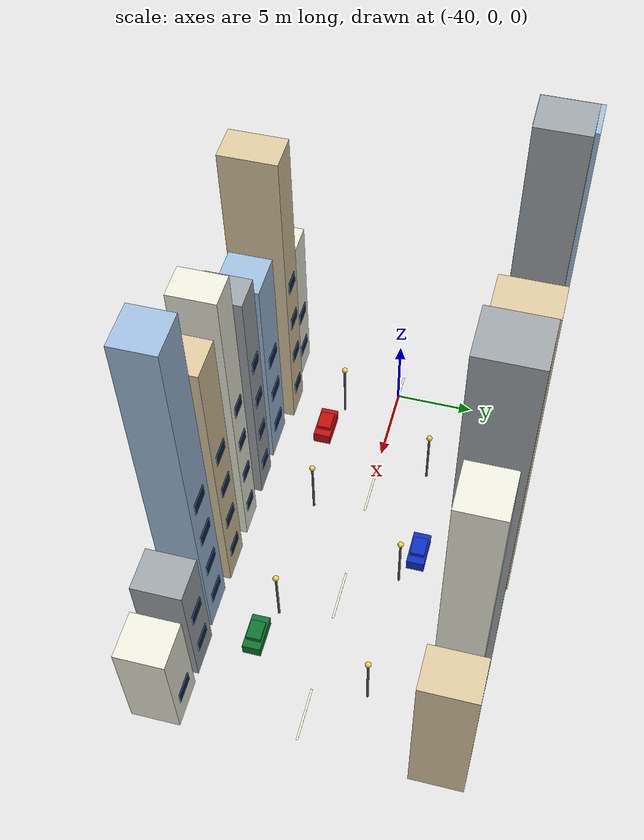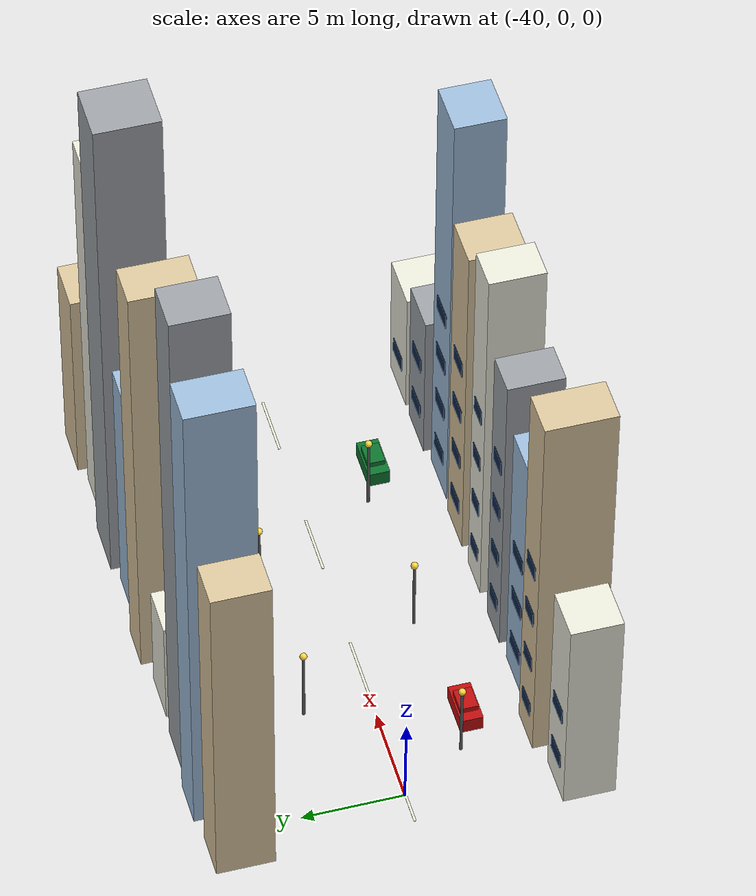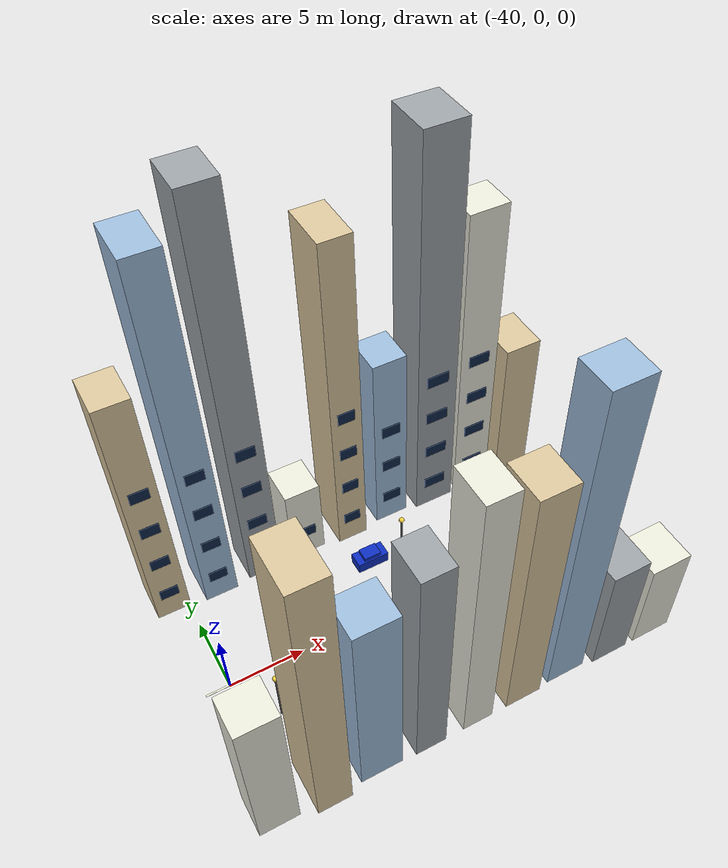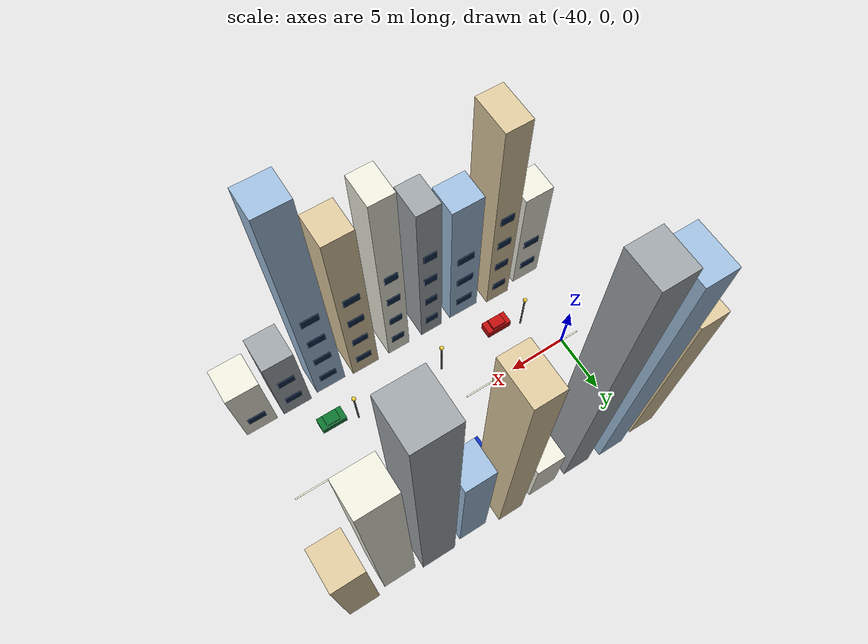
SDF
<sdf version="1.7">
 <world name="urban_street">
  <model name="white_lane_marking_00">
   <static>1</static>
   <pose>-40 0 0.055 0 -0 0</pose>
   <link name="link">
    <collision name="collision"><geometry><box><size>3.2 0.12 0.02</size></box></geometry></collision>
    <visual name="visual">
     <geometry><box><size>3.2 0.12 0.02</size></box></geometry>
     <material>
      <ambient>0.95 0.95 0.85 1</ambient>
      <diffuse>0.95 0.95 0.85 1</diffuse>
      <specular>0.1 0.1 0.1 1</specular>
     </material>
    </visual>
   </link>
  </model>
  <model name="white_lane_marking_01">
   <static>1</static>
   <pose>-32 0 0.055 0 -0 0</pose>
   <link name="link">
    <collision name="collision"><geometry><box><size>3.2 0.12 0.02</size></box></geometry></collision>
    <visual name="visual">
     <geometry><box><size>3.2 0.12 0.02</size></box></geometry>
     <material>
      <ambient>0.95 0.95 0.85 1</ambient>
      <diffuse>0.95 0.95 0.85 1</diffuse>
      <specular>0.1 0.1 0.1 1</specular>
     </material>
    </visual>
   </link>
  </model>
  <model name="white_lane_marking_02">
   <static>1</static>
   <pose>-24 0 0.055 0 -0 0</pose>
   <link name="link">
    <collision name="collision"><geometry><box><size>3.2 0.12 0.02</size></box></geometry></collision>
    <visual name="visual">
     <geometry><box><size>3.2 0.12 0.02</size></box></geometry>
     <material>
      <ambient>0.95 0.95 0.85 1</ambient>
      <diffuse>0.95 0.95 0.85 1</diffuse>
      <specular>0.1 0.1 0.1 1</specular>
     </material>
    </visual>
   </link>
  </model>
  <model name="white_lane_marking_03">
   <static>1</static>
   <pose>-16 0 0.055 0 -0 0</pose>
   <link name="link">
    <collision name="collision"><geometry><box><size>3.2 0.12 0.02</size></box></geometry></collision>
    <visual name="visual">
     <geometry><box><size>3.2 0.12 0.02</size></box></geometry>
     <material>
      <ambient>0.95 0.95 0.85 1</ambient>
      <diffuse>0.95 0.95 0.85 1</diffuse>
      <specular>0.1 0.1 0.1 1</specular>
     </material>
    </visual>
   </link>
  </model>
  <model name="building_facade_01">
   <static>1</static>
   <pose>-41 -8.2 5.94 0 -0 0</pose>
   <link name="link">
    <collision name="collision"><geometry><box><size>2.51 2.53 11.88</size></box></geometry></collision>
    <visual name="visual">
     <geometry><box><size>2.51 2.53 11.88</size></box></geometry>
     <material>
      <ambient>0.92 0.92 0.86 1</ambient>
      <diffuse>0.92 0.92 0.86 1</diffuse>
      <specular>0.1 0.1 0.1 1</specular>
     </material>
    </visual>
   </link>
  </model>
  <model name="building_facade_01_window_0">
   <static>1</static>
   <pose>-41 -6.9 2.2 0 -0 0</pose>
   <link name="link">
    <collision name="collision"><geometry><box><size>1.38 0.05 0.85</size></box></geometry></collision>
    <visual name="visual">
     <geometry><box><size>1.38 0.05 0.85</size></box></geometry>
     <material>
      <ambient>0.05 0.14 0.28 1</ambient>
      <diffuse>0.05 0.14 0.28 1</diffuse>
      <specular>0.1 0.1 0.1 1</specular>
     </material>
    </visual>
   </link>
  </model>
  <model name="building_facade_01_window_1">
   <static>1</static>
   <pose>-41 -6.9 5.4 0 -0 0</pose>
   <link name="link">
    <collision name="collision"><geometry><box><size>1.38 0.05 0.85</size></box></geometry></collision>
    <visual name="visual">
     <geometry><box><size>1.38 0.05 0.85</size></box></geometry>
     <material>
      <ambient>0.05 0.14 0.28 1</ambient>
      <diffuse>0.05 0.14 0.28 1</diffuse>
      <specular>0.1 0.1 0.1 1</specular>
     </material>
    </visual>
   </link>
  </model>
  <model name="building_facade_02">
   <static>1</static>
   <pose>-37.75 -8.2 10.96 0 -0 0</pose>
   <link name="link">
    <collision name="collision"><geometry><box><size>2.18 3.46 21.92</size></box></geometry></collision>
    <visual name="visual">
     <geometry><box><size>2.18 3.46 21.92</size></box></geometry>
     <material>
      <ambient>0.86 0.78 0.62 1</ambient>
      <diffuse>0.86 0.78 0.62 1</diffuse>
      <specular>0.1 0.1 0.1 1</specular>
     </material>
    </visual>
   </link>
  </model>
  <model name="building_facade_02_window_0">
   <static>1</static>
   <pose>-37.75 -6.44 2.2 0 -0 0</pose>
   <link name="link">
    <collision name="collision"><geometry><box><size>1.2 0.05 0.85</size></box></geometry></collision>
    <visual name="visual">
     <geometry><box><size>1.2 0.05 0.85</size></box></geometry>
     <material>
      <ambient>0.05 0.14 0.28 1</ambient>
      <diffuse>0.05 0.14 0.28 1</diffuse>
      <specular>0.1 0.1 0.1 1</specular>
     </material>
    </visual>
   </link>
  </model>
  <model name="building_facade_02_window_1">
   <static>1</static>
   <pose>-37.75 -6.44 5.4 0 -0 0</pose>
   <link name="link">
    <collision name="collision"><geometry><box><size>1.2 0.05 0.85</size></box></geometry></collision>
    <visual name="visual">
     <geometry><box><size>1.2 0.05 0.85</size></box></geometry>
     <material>
      <ambient>0.05 0.14 0.28 1</ambient>
      <diffuse>0.05 0.14 0.28 1</diffuse>
      <specular>0.1 0.1 0.1 1</specular>
     </material>
    </visual>
   </link>
  </model>
  <model name="building_facade_02_window_2">
   <static>1</static>
   <pose>-37.75 -6.44 8.6 0 -0 0</pose>
   <link name="link">
    <collision name="collision"><geometry><box><size>1.2 0.05 0.85</size></box></geometry></collision>
    <visual name="visual">
     <geometry><box><size>1.2 0.05 0.85</size></box></geometry>
     <material>
      <ambient>0.05 0.14 0.28 1</ambient>
      <diffuse>0.05 0.14 0.28 1</diffuse>
      <specular>0.1 0.1 0.1 1</specular>
     </material>
    </visual>
   </link>
  </model>
  <model name="building_facade_02_window_3">
   <static>1</static>
   <pose>-37.75 -6.44 11.8 0 -0 0</pose>
   <link name="link">
    <collision name="collision"><geometry><box><size>1.2 0.05 0.85</size></box></geometry></collision>
    <visual name="visual">
     <geometry><box><size>1.2 0.05 0.85</size></box></geometry>
     <material>
      <ambient>0.05 0.14 0.28 1</ambient>
      <diffuse>0.05 0.14 0.28 1</diffuse>
      <specular>0.1 0.1 0.1 1</specular>
     </material>
    </visual>
   </link>
  </model>
  <model name="building_facade_03">
   <static>1</static>
   <pose>-34.5 -8.2 7.77 0 -0 0</pose>
   <link name="link">
    <collision name="collision"><geometry><box><size>2.71 2.61 15.55</size></box></geometry></collision>
    <visual name="visual">
     <geometry><box><size>2.71 2.61 15.55</size></box></geometry>
     <material>
      <ambient>0.62 0.74 0.86 1</ambient>
      <diffuse>0.62 0.74 0.86 1</diffuse>
      <specular>0.1 0.1 0.1 1</specular>
     </material>
    </visual>
   </link>
  </model>
  <model name="building_facade_03_window_0">
   <static>1</static>
   <pose>-34.5 -6.86 2.2 0 -0 0</pose>
   <link name="link">
    <collision name="collision"><geometry><box><size>1.49 0.05 0.85</size></box></geometry></collision>
    <visual name="visual">
     <geometry><box><size>1.49 0.05 0.85</size></box></geometry>
     <material>
      <ambient>0.05 0.14 0.28 1</ambient>
      <diffuse>0.05 0.14 0.28 1</diffuse>
      <specular>0.1 0.1 0.1 1</specular>
     </material>
    </visual>
   </link>
  </model>
  <model name="building_facade_03_window_1">
   <static>1</static>
   <pose>-34.5 -6.86 5.4 0 -0 0</pose>
   <link name="link">
    <collision name="collision"><geometry><box><size>1.49 0.05 0.85</size></box></geometry></collision>
    <visual name="visual">
     <geometry><box><size>1.49 0.05 0.85</size></box></geometry>
     <material>
      <ambient>0.05 0.14 0.28 1</ambient>
      <diffuse>0.05 0.14 0.28 1</diffuse>
      <specular>0.1 0.1 0.1 1</specular>
     </material>
    </visual>
   </link>
  </model>
  <model name="building_facade_03_window_2">
   <static>1</static>
   <pose>-34.5 -6.86 8.6 0 -0 0</pose>
   <link name="link">
    <collision name="collision"><geometry><box><size>1.49 0.05 0.85</size></box></geometry></collision>
    <visual name="visual">
     <geometry><box><size>1.49 0.05 0.85</size></box></geometry>
     <material>
      <ambient>0.05 0.14 0.28 1</ambient>
      <diffuse>0.05 0.14 0.28 1</diffuse>
      <specular>0.1 0.1 0.1 1</specular>
     </material>
    </visual>
   </link>
  </model>
  <model name="building_facade_04">
   <static>1</static>
   <pose>-31.25 -8.2 8.82 0 -0 0</pose>
   <link name="link">
    <collision name="collision"><geometry><box><size>2.02 2.78 17.63</size></box></geometry></collision>
    <visual name="visual">
     <geometry><box><size>2.02 2.78 17.63</size></box></geometry>
     <material>
      <ambient>0.62 0.64 0.66 1</ambient>
      <diffuse>0.62 0.64 0.66 1</diffuse>
      <specular>0.1 0.1 0.1 1</specular>
     </material>
    </visual>
   </link>
  </model>
  <model name="building_facade_04_window_0">
   <static>1</static>
   <pose>-31.25 -6.78 2.2 0 -0 0</pose>
   <link name="link">
    <collision name="collision"><geometry><box><size>1.11 0.05 0.85</size></box></geometry></collision>
    <visual name="visual">
     <geometry><box><size>1.11 0.05 0.85</size></box></geometry>
     <material>
      <ambient>0.05 0.14 0.28 1</ambient>
      <diffuse>0.05 0.14 0.28 1</diffuse>
      <specular>0.1 0.1 0.1 1</specular>
     </material>
    </visual>
   </link>
  </model>
  <model name="building_facade_04_window_1">
   <static>1</static>
   <pose>-31.25 -6.78 5.4 0 -0 0</pose>
   <link name="link">
    <collision name="collision"><geometry><box><size>1.11 0.05 0.85</size></box></geometry></collision>
    <visual name="visual">
     <geometry><box><size>1.11 0.05 0.85</size></box></geometry>
     <material>
      <ambient>0.05 0.14 0.28 1</ambient>
      <diffuse>0.05 0.14 0.28 1</diffuse>
      <specular>0.1 0.1 0.1 1</specular>
     </material>
    </visual>
   </link>
  </model>
  <model name="building_facade_04_window_2">
   <static>1</static>
   <pose>-31.25 -6.78 8.6 0 -0 0</pose>
   <link name="link">
    <collision name="collision"><geometry><box><size>1.11 0.05 0.85</size></box></geometry></collision>
    <visual name="visual">
     <geometry><box><size>1.11 0.05 0.85</size></box></geometry>
     <material>
      <ambient>0.05 0.14 0.28 1</ambient>
      <diffuse>0.05 0.14 0.28 1</diffuse>
      <specular>0.1 0.1 0.1 1</specular>
     </material>
    </visual>
   </link>
  </model>
  <model name="building_facade_04_window_3">
   <static>1</static>
   <pose>-31.25 -6.78 11.8 0 -0 0</pose>
   <link name="link">
    <collision name="collision"><geometry><box><size>1.11 0.05 0.85</size></box></geometry></collision>
    <visual name="visual">
     <geometry><box><size>1.11 0.05 0.85</size></box></geometry>
     <material>
      <ambient>0.05 0.14 0.28 1</ambient>
      <diffuse>0.05 0.14 0.28 1</diffuse>
      <specular>0.1 0.1 0.1 1</specular>
     </material>
    </visual>
   </link>
  </model>
  <model name="building_facade_05">
   <static>1</static>
   <pose>-28 -8.2 10.62 0 -0 0</pose>
   <link name="link">
    <collision name="collision"><geometry><box><size>2.02 2.76 21.25</size></box></geometry></collision>
    <visual name="visual">
     <geometry><box><size>2.02 2.76 21.25</size></box></geometry>
     <material>
      <ambient>0.92 0.92 0.86 1</ambient>
      <diffuse>0.92 0.92 0.86 1</diffuse>
      <specular>0.1 0.1 0.1 1</specular>
     </material>
    </visual>
   </link>
  </model>
  <model name="building_facade_05_window_0">
   <static>1</static>
   <pose>-28 -6.79 2.2 0 -0 0</pose>
   <link name="link">
    <collision name="collision"><geometry><box><size>1.11 0.05 0.85</size></box></geometry></collision>
    <visual name="visual">
     <geometry><box><size>1.11 0.05 0.85</size></box></geometry>
     <material>
      <ambient>0.05 0.14 0.28 1</ambient>
      <diffuse>0.05 0.14 0.28 1</diffuse>
      <specular>0.1 0.1 0.1 1</specular>
     </material>
    </visual>
   </link>
  </model>
  <model name="building_facade_05_window_1">
   <static>1</static>
   <pose>-28 -6.79 5.4 0 -0 0</pose>
   <link name="link">
    <collision name="collision"><geometry><box><size>1.11 0.05 0.85</size></box></geometry></collision>
    <visual name="visual">
     <geometry><box><size>1.11 0.05 0.85</size></box></geometry>
     <material>
      <ambient>0.05 0.14 0.28 1</ambient>
      <diffuse>0.05 0.14 0.28 1</diffuse>
      <specular>0.1 0.1 0.1 1</specular>
     </material>
    </visual>
   </link>
  </model>
  <model name="building_facade_05_window_2">
   <static>1</static>
   <pose>-28 -6.79 8.6 0 -0 0</pose>
   <link name="link">
    <collision name="collision"><geometry><box><size>1.11 0.05 0.85</size></box></geometry></collision>
    <visual name="visual">
     <geometry><box><size>1.11 0.05 0.85</size></box></geometry>
     <material>
      <ambient>0.05 0.14 0.28 1</ambient>
      <diffuse>0.05 0.14 0.28 1</diffuse>
      <specular>0.1 0.1 0.1 1</specular>
     </material>
    </visual>
   </link>
  </model>
  <model name="building_facade_05_window_3">
   <static>1</static>
   <pose>-28 -6.79 11.8 0 -0 0</pose>
   <link name="link">
    <collision name="collision"><geometry><box><size>1.11 0.05 0.85</size></box></geometry></collision>
    <visual name="visual">
     <geometry><box><size>1.11 0.05 0.85</size></box></geometry>
     <material>
      <ambient>0.05 0.14 0.28 1</ambient>
      <diffuse>0.05 0.14 0.28 1</diffuse>
      <specular>0.1 0.1 0.1 1</specular>
     </material>
    </visual>
   </link>
  </model>
  <model name="building_facade_06">
   <static>1</static>
   <pose>-24.75 -8.2 9.87 0 -0 0</pose>
   <link name="link">
    <collision name="collision"><geometry><box><size>2.44 2.79 19.73</size></box></geometry></collision>
    <visual name="visual">
     <geometry><box><size>2.44 2.79 19.73</size></box></geometry>
     <material>
      <ambient>0.86 0.78 0.62 1</ambient>
      <diffuse>0.86 0.78 0.62 1</diffuse>
      <specular>0.1 0.1 0.1 1</specular>
     </material>
    </visual>
   </link>
  </model>
  <model name="building_facade_06_window_0">
   <static>1</static>
   <pose>-24.75 -6.78 2.2 0 -0 0</pose>
   <link name="link">
    <collision name="collision"><geometry><box><size>1.34 0.05 0.85</size></box></geometry></collision>
    <visual name="visual">
     <geometry><box><size>1.34 0.05 0.85</size></box></geometry>
     <material>
      <ambient>0.05 0.14 0.28 1</ambient>
      <diffuse>0.05 0.14 0.28 1</diffuse>
      <specular>0.1 0.1 0.1 1</specular>
     </material>
    </visual>
   </link>
  </model>
  <model name="building_facade_06_window_1">
   <static>1</static>
   <pose>-24.75 -6.78 5.4 0 -0 0</pose>
   <link name="link">
    <collision name="collision"><geometry><box><size>1.34 0.05 0.85</size></box></geometry></collision>
    <visual name="visual">
     <geometry><box><size>1.34 0.05 0.85</size></box></geometry>
     <material>
      <ambient>0.05 0.14 0.28 1</ambient>
      <diffuse>0.05 0.14 0.28 1</diffuse>
      <specular>0.1 0.1 0.1 1</specular>
     </material>
    </visual>
   </link>
  </model>
  <model name="building_facade_06_window_2">
   <static>1</static>
   <pose>-24.75 -6.78 8.6 0 -0 0</pose>
   <link name="link">
    <collision name="collision"><geometry><box><size>1.34 0.05 0.85</size></box></geometry></collision>
    <visual name="visual">
     <geometry><box><size>1.34 0.05 0.85</size></box></geometry>
     <material>
      <ambient>0.05 0.14 0.28 1</ambient>
      <diffuse>0.05 0.14 0.28 1</diffuse>
      <specular>0.1 0.1 0.1 1</specular>
     </material>
    </visual>
   </link>
  </model>
  <model name="building_facade_06_window_3">
   <static>1</static>
   <pose>-24.75 -6.78 11.8 0 -0 0</pose>
   <link name="link">
    <collision name="collision"><geometry><box><size>1.34 0.05 0.85</size></box></geometry></collision>
    <visual name="visual">
     <geometry><box><size>1.34 0.05 0.85</size></box></geometry>
     <material>
      <ambient>0.05 0.14 0.28 1</ambient>
      <diffuse>0.05 0.14 0.28 1</diffuse>
      <specular>0.1 0.1 0.1 1</specular>
     </material>
    </visual>
   </link>
  </model>
  <model name="building_facade_07">
   <static>1</static>
   <pose>-21.5 -8.2 12.57 0 -0 0</pose>
   <link name="link">
    <collision name="collision"><geometry><box><size>2.65 2.51 25.15</size></box></geometry></collision>
    <visual name="visual">
     <geometry><box><size>2.65 2.51 25.15</size></box></geometry>
     <material>
      <ambient>0.62 0.74 0.86 1</ambient>
      <diffuse>0.62 0.74 0.86 1</diffuse>
      <specular>0.1 0.1 0.1 1</specular>
     </material>
    </visual>
   </link>
  </model>
  <model name="building_facade_07_window_0">
   <static>1</static>
   <pose>-21.5 -6.92 2.2 0 -0 0</pose>
   <link name="link">
    <collision name="collision"><geometry><box><size>1.46 0.05 0.85</size></box></geometry></collision>
    <visual name="visual">
     <geometry><box><size>1.46 0.05 0.85</size></box></geometry>
     <material>
      <ambient>0.05 0.14 0.28 1</ambient>
      <diffuse>0.05 0.14 0.28 1</diffuse>
      <specular>0.1 0.1 0.1 1</specular>
     </material>
    </visual>
   </link>
  </model>
  <model name="building_facade_07_window_1">
   <static>1</static>
   <pose>-21.5 -6.92 5.4 0 -0 0</pose>
   <link name="link">
    <collision name="collision"><geometry><box><size>1.46 0.05 0.85</size></box></geometry></collision>
    <visual name="visual">
     <geometry><box><size>1.46 0.05 0.85</size></box></geometry>
     <material>
      <ambient>0.05 0.14 0.28 1</ambient>
      <diffuse>0.05 0.14 0.28 1</diffuse>
      <specular>0.1 0.1 0.1 1</specular>
     </material>
    </visual>
   </link>
  </model>
  <model name="building_facade_07_window_2">
   <static>1</static>
   <pose>-21.5 -6.92 8.6 0 -0 0</pose>
   <link name="link">
    <collision name="collision"><geometry><box><size>1.46 0.05 0.85</size></box></geometry></collision>
    <visual name="visual">
     <geometry><box><size>1.46 0.05 0.85</size></box></geometry>
     <material>
      <ambient>0.05 0.14 0.28 1</ambient>
      <diffuse>0.05 0.14 0.28 1</diffuse>
      <specular>0.1 0.1 0.1 1</specular>
     </material>
    </visual>
   </link>
  </model>
  <model name="building_facade_07_window_3">
   <static>1</static>
   <pose>-21.5 -6.92 11.8 0 -0 0</pose>
   <link name="link">
    <collision name="collision"><geometry><box><size>1.46 0.05 0.85</size></box></geometry></collision>
    <visual name="visual">
     <geometry><box><size>1.46 0.05 0.85</size></box></geometry>
     <material>
      <ambient>0.05 0.14 0.28 1</ambient>
      <diffuse>0.05 0.14 0.28 1</diffuse>
      <specular>0.1 0.1 0.1 1</specular>
     </material>
    </visual>
   </link>
  </model>
  <model name="building_facade_08">
   <static>1</static>
   <pose>-18.25 -8.2 4.44 0 -0 0</pose>
   <link name="link">
    <collision name="collision"><geometry><box><size>2.56 2.94 8.89</size></box></geometry></collision>
    <visual name="visual">
     <geometry><box><size>2.56 2.94 8.89</size></box></geometry>
     <material>
      <ambient>0.62 0.64 0.66 1</ambient>
      <diffuse>0.62 0.64 0.66 1</diffuse>
      <specular>0.1 0.1 0.1 1</specular>
     </material>
    </visual>
   </link>
  </model>
  <model name="building_facade_08_window_0">
   <static>1</static>
   <pose>-18.25 -6.7 2.2 0 -0 0</pose>
   <link name="link">
    <collision name="collision"><geometry><box><size>1.41 0.05 0.85</size></box></geometry></collision>
    <visual name="visual">
     <geometry><box><size>1.41 0.05 0.85</size></box></geometry>
     <material>
      <ambient>0.05 0.14 0.28 1</ambient>
      <diffuse>0.05 0.14 0.28 1</diffuse>
      <specular>0.1 0.1 0.1 1</specular>
     </material>
    </visual>
   </link>
  </model>
  <model name="building_facade_08_window_1">
   <static>1</static>
   <pose>-18.25 -6.7 5.4 0 -0 0</pose>
   <link name="link">
    <collision name="collision"><geometry><box><size>1.41 0.05 0.85</size></box></geometry></collision>
    <visual name="visual">
     <geometry><box><size>1.41 0.05 0.85</size></box></geometry>
     <material>
      <ambient>0.05 0.14 0.28 1</ambient>
      <diffuse>0.05 0.14 0.28 1</diffuse>
      <specular>0.1 0.1 0.1 1</specular>
     </material>
    </visual>
   </link>
  </model>
  <model name="building_facade_09">
   <static>1</static>
   <pose>-15 -8.2 3.66 0 -0 0</pose>
   <link name="link">
    <collision name="collision"><geometry><box><size>2.77 2.94 7.32</size></box></geometry></collision>
    <visual name="visual">
     <geometry><box><size>2.77 2.94 7.32</size></box></geometry>
     <material>
      <ambient>0.92 0.92 0.86 1</ambient>
      <diffuse>0.92 0.92 0.86 1</diffuse>
      <specular>0.1 0.1 0.1 1</specular>
     </material>
    </visual>
   </link>
  </model>
  <model name="building_facade_09_window_0">
   <static>1</static>
   <pose>-15 -6.7 2.2 0 -0 0</pose>
   <link name="link">
    <collision name="collision"><geometry><box><size>1.52 0.05 0.85</size></box></geometry></collision>
    <visual name="visual">
     <geometry><box><size>1.52 0.05 0.85</size></box></geometry>
     <material>
      <ambient>0.05 0.14 0.28 1</ambient>
      <diffuse>0.05 0.14 0.28 1</diffuse>
      <specular>0.1 0.1 0.1 1</specular>
     </material>
    </visual>
   </link>
  </model>
  <model name="building_facade_27">
   <static>1</static>
   <pose>-41 8.2 9.52 0 -0 0</pose>
   <link name="link">
    <collision name="collision"><geometry><box><size>2.21 2.82 19.03</size></box></geometry></collision>
    <visual name="visual">
     <geometry><box><size>2.21 2.82 19.03</size></box></geometry>
     <material>
      <ambient>0.86 0.78 0.62 1</ambient>
      <diffuse>0.86 0.78 0.62 1</diffuse>
      <specular>0.1 0.1 0.1 1</specular>
     </material>
    </visual>
   </link>
  </model>
  <model name="building_facade_27_window_0">
   <static>1</static>
   <pose>-41 6.76 2.2 0 -0 0</pose>
   <link name="link">
    <collision name="collision"><geometry><box><size>1.22 0.05 0.85</size></box></geometry></collision>
    <visual name="visual">
     <geometry><box><size>1.22 0.05 0.85</size></box></geometry>
     <material>
      <ambient>0.05 0.14 0.28 1</ambient>
      <diffuse>0.05 0.14 0.28 1</diffuse>
      <specular>0.1 0.1 0.1 1</specular>
     </material>
    </visual>
   </link>
  </model>
  <model name="building_facade_27_window_1">
   <static>1</static>
   <pose>-41 6.76 5.4 0 -0 0</pose>
   <link name="link">
    <collision name="collision"><geometry><box><size>1.22 0.05 0.85</size></box></geometry></collision>
    <visual name="visual">
     <geometry><box><size>1.22 0.05 0.85</size></box></geometry>
     <material>
      <ambient>0.05 0.14 0.28 1</ambient>
      <diffuse>0.05 0.14 0.28 1</diffuse>
      <specular>0.1 0.1 0.1 1</specular>
     </material>
    </visual>
   </link>
  </model>
  <model name="building_facade_27_window_2">
   <static>1</static>
   <pose>-41 6.76 8.6 0 -0 0</pose>
   <link name="link">
    <collision name="collision"><geometry><box><size>1.22 0.05 0.85</size></box></geometry></collision>
    <visual name="visual">
     <geometry><box><size>1.22 0.05 0.85</size></box></geometry>
     <material>
      <ambient>0.05 0.14 0.28 1</ambient>
      <diffuse>0.05 0.14 0.28 1</diffuse>
      <specular>0.1 0.1 0.1 1</specular>
     </material>
    </visual>
   </link>
  </model>
  <model name="building_facade_27_window_3">
   <static>1</static>
   <pose>-41 6.76 11.8 0 -0 0</pose>
   <link name="link">
    <collision name="collision"><geometry><box><size>1.22 0.05 0.85</size></box></geometry></collision>
    <visual name="visual">
     <geometry><box><size>1.22 0.05 0.85</size></box></geometry>
     <material>
      <ambient>0.05 0.14 0.28 1</ambient>
      <diffuse>0.05 0.14 0.28 1</diffuse>
      <specular>0.1 0.1 0.1 1</specular>
     </material>
    </visual>
   </link>
  </model>
  <model name="building_facade_28">
   <static>1</static>
   <pose>-37.75 8.2 13.72 0 -0 0</pose>
   <link name="link">
    <collision name="collision"><geometry><box><size>2.21 3.26 27.45</size></box></geometry></collision>
    <visual name="visual">
     <geometry><box><size>2.21 3.26 27.45</size></box></geometry>
     <material>
      <ambient>0.62 0.74 0.86 1</ambient>
      <diffuse>0.62 0.74 0.86 1</diffuse>
      <specular>0.1 0.1 0.1 1</specular>
     </material>
    </visual>
   </link>
  </model>
  <model name="building_facade_28_window_0">
   <static>1</static>
   <pose>-37.75 6.54 2.2 0 -0 0</pose>
   <link name="link">
    <collision name="collision"><geometry><box><size>1.22 0.05 0.85</size></box></geometry></collision>
    <visual name="visual">
     <geometry><box><size>1.22 0.05 0.85</size></box></geometry>
     <material>
      <ambient>0.05 0.14 0.28 1</ambient>
      <diffuse>0.05 0.14 0.28 1</diffuse>
      <specular>0.1 0.1 0.1 1</specular>
     </material>
    </visual>
   </link>
  </model>
  <model name="building_facade_28_window_1">
   <static>1</static>
   <pose>-37.75 6.54 5.4 0 -0 0</pose>
   <link name="link">
    <collision name="collision"><geometry><box><size>1.22 0.05 0.85</size></box></geometry></collision>
    <visual name="visual">
     <geometry><box><size>1.22 0.05 0.85</size></box></geometry>
     <material>
      <ambient>0.05 0.14 0.28 1</ambient>
      <diffuse>0.05 0.14 0.28 1</diffuse>
      <specular>0.1 0.1 0.1 1</specular>
     </material>
    </visual>
   </link>
  </model>
  <model name="building_facade_28_window_2">
   <static>1</static>
   <pose>-37.75 6.54 8.6 0 -0 0</pose>
   <link name="link">
    <collision name="collision"><geometry><box><size>1.22 0.05 0.85</size></box></geometry></collision>
    <visual name="visual">
     <geometry><box><size>1.22 0.05 0.85</size></box></geometry>
     <material>
      <ambient>0.05 0.14 0.28 1</ambient>
      <diffuse>0.05 0.14 0.28 1</diffuse>
      <specular>0.1 0.1 0.1 1</specular>
     </material>
    </visual>
   </link>
  </model>
  <model name="building_facade_28_window_3">
   <static>1</static>
   <pose>-37.75 6.54 11.8 0 -0 0</pose>
   <link name="link">
    <collision name="collision"><geometry><box><size>1.22 0.05 0.85</size></box></geometry></collision>
    <visual name="visual">
     <geometry><box><size>1.22 0.05 0.85</size></box></geometry>
     <material>
      <ambient>0.05 0.14 0.28 1</ambient>
      <diffuse>0.05 0.14 0.28 1</diffuse>
      <specular>0.1 0.1 0.1 1</specular>
     </material>
    </visual>
   </link>
  </model>
  <model name="building_facade_29">
   <static>1</static>
   <pose>-34.5 8.2 14.97 0 -0 0</pose>
   <link name="link">
    <collision name="collision"><geometry><box><size>2.32 2.79 29.94</size></box></geometry></collision>
    <visual name="visual">
     <geometry><box><size>2.32 2.79 29.94</size></box></geometry>
     <material>
      <ambient>0.62 0.64 0.66 1</ambient>
      <diffuse>0.62 0.64 0.66 1</diffuse>
      <specular>0.1 0.1 0.1 1</specular>
     </material>
    </visual>
   </link>
  </model>
  <model name="building_facade_29_window_0">
   <static>1</static>
   <pose>-34.5 6.78 2.2 0 -0 0</pose>
   <link name="link">
    <collision name="collision"><geometry><box><size>1.28 0.05 0.85</size></box></geometry></collision>
    <visual name="visual">
     <geometry><box><size>1.28 0.05 0.85</size></box></geometry>
     <material>
      <ambient>0.05 0.14 0.28 1</ambient>
      <diffuse>0.05 0.14 0.28 1</diffuse>
      <specular>0.1 0.1 0.1 1</specular>
     </material>
    </visual>
   </link>
  </model>
  <model name="building_facade_29_window_1">
   <static>1</static>
   <pose>-34.5 6.78 5.4 0 -0 0</pose>
   <link name="link">
    <collision name="collision"><geometry><box><size>1.28 0.05 0.85</size></box></geometry></collision>
    <visual name="visual">
     <geometry><box><size>1.28 0.05 0.85</size></box></geometry>
     <material>
      <ambient>0.05 0.14 0.28 1</ambient>
      <diffuse>0.05 0.14 0.28 1</diffuse>
      <specular>0.1 0.1 0.1 1</specular>
     </material>
    </visual>
   </link>
  </model>
  <model name="building_facade_29_window_2">
   <static>1</static>
   <pose>-34.5 6.78 8.6 0 -0 0</pose>
   <link name="link">
    <collision name="collision"><geometry><box><size>1.28 0.05 0.85</size></box></geometry></collision>
    <visual name="visual">
     <geometry><box><size>1.28 0.05 0.85</size></box></geometry>
     <material>
      <ambient>0.05 0.14 0.28 1</ambient>
      <diffuse>0.05 0.14 0.28 1</diffuse>
      <specular>0.1 0.1 0.1 1</specular>
     </material>
    </visual>
   </link>
  </model>
  <model name="building_facade_29_window_3">
   <static>1</static>
   <pose>-34.5 6.78 11.8 0 -0 0</pose>
   <link name="link">
    <collision name="collision"><geometry><box><size>1.28 0.05 0.85</size></box></geometry></collision>
    <visual name="visual">
     <geometry><box><size>1.28 0.05 0.85</size></box></geometry>
     <material>
      <ambient>0.05 0.14 0.28 1</ambient>
      <diffuse>0.05 0.14 0.28 1</diffuse>
      <specular>0.1 0.1 0.1 1</specular>
     </material>
    </visual>
   </link>
  </model>
  <model name="building_facade_30">
   <static>1</static>
   <pose>-31.25 8.2 3.09 0 -0 0</pose>
   <link name="link">
    <collision name="collision"><geometry><box><size>2.41 2.62 6.18</size></box></geometry></collision>
    <visual name="visual">
     <geometry><box><size>2.41 2.62 6.18</size></box></geometry>
     <material>
      <ambient>0.92 0.92 0.86 1</ambient>
      <diffuse>0.92 0.92 0.86 1</diffuse>
      <specular>0.1 0.1 0.1 1</specular>
     </material>
    </visual>
   </link>
  </model>
  <model name="building_facade_30_window_0">
   <static>1</static>
   <pose>-31.25 6.86 2.2 0 -0 0</pose>
   <link name="link">
    <collision name="collision"><geometry><box><size>1.32 0.05 0.85</size></box></geometry></collision>
    <visual name="visual">
     <geometry><box><size>1.32 0.05 0.85</size></box></geometry>
     <material>
      <ambient>0.05 0.14 0.28 1</ambient>
      <diffuse>0.05 0.14 0.28 1</diffuse>
      <specular>0.1 0.1 0.1 1</specular>
     </material>
    </visual>
   </link>
  </model>
  <model name="building_facade_31">
   <static>1</static>
   <pose>-28 8.2 12.4 0 -0 0</pose>
   <link name="link">
    <collision name="collision"><geometry><box><size>2.09 3.32 24.8</size></box></geometry></collision>
    <visual name="visual">
     <geometry><box><size>2.09 3.32 24.8</size></box></geometry>
     <material>
      <ambient>0.86 0.78 0.62 1</ambient>
      <diffuse>0.86 0.78 0.62 1</diffuse>
      <specular>0.1 0.1 0.1 1</specular>
     </material>
    </visual>
   </link>
  </model>
  <model name="building_facade_31_window_0">
   <static>1</static>
   <pose>-28 6.51 2.2 0 -0 0</pose>
   <link name="link">
    <collision name="collision"><geometry><box><size>1.15 0.05 0.85</size></box></geometry></collision>
    <visual name="visual">
     <geometry><box><size>1.15 0.05 0.85</size></box></geometry>
     <material>
      <ambient>0.05 0.14 0.28 1</ambient>
      <diffuse>0.05 0.14 0.28 1</diffuse>
      <specular>0.1 0.1 0.1 1</specular>
     </material>
    </visual>
   </link>
  </model>
  <model name="building_facade_31_window_1">
   <static>1</static>
   <pose>-28 6.51 5.4 0 -0 0</pose>
   <link name="link">
    <collision name="collision"><geometry><box><size>1.15 0.05 0.85</size></box></geometry></collision>
    <visual name="visual">
     <geometry><box><size>1.15 0.05 0.85</size></box></geometry>
     <material>
      <ambient>0.05 0.14 0.28 1</ambient>
      <diffuse>0.05 0.14 0.28 1</diffuse>
      <specular>0.1 0.1 0.1 1</specular>
     </material>
    </visual>
   </link>
  </model>
  <model name="building_facade_31_window_2">
   <static>1</static>
   <pose>-28 6.51 8.6 0 -0 0</pose>
   <link name="link">
    <collision name="collision"><geometry><box><size>1.15 0.05 0.85</size></box></geometry></collision>
    <visual name="visual">
     <geometry><box><size>1.15 0.05 0.85</size></box></geometry>
     <material>
      <ambient>0.05 0.14 0.28 1</ambient>
      <diffuse>0.05 0.14 0.28 1</diffuse>
      <specular>0.1 0.1 0.1 1</specular>
     </material>
    </visual>
   </link>
  </model>
  <model name="building_facade_31_window_3">
   <static>1</static>
   <pose>-28 6.51 11.8 0 -0 0</pose>
   <link name="link">
    <collision name="collision"><geometry><box><size>1.15 0.05 0.85</size></box></geometry></collision>
    <visual name="visual">
     <geometry><box><size>1.15 0.05 0.85</size></box></geometry>
     <material>
      <ambient>0.05 0.14 0.28 1</ambient>
      <diffuse>0.05 0.14 0.28 1</diffuse>
      <specular>0.1 0.1 0.1 1</specular>
     </material>
    </visual>
   </link>
  </model>
  <model name="building_facade_32">
   <static>1</static>
   <pose>-24.75 8.2 7.27 0 -0 0</pose>
   <link name="link">
    <collision name="collision"><geometry><box><size>2.34 2.58 14.54</size></box></geometry></collision>
    <visual name="visual">
     <geometry><box><size>2.34 2.58 14.54</size></box></geometry>
     <material>
      <ambient>0.62 0.74 0.86 1</ambient>
      <diffuse>0.62 0.74 0.86 1</diffuse>
      <specular>0.1 0.1 0.1 1</specular>
     </material>
    </visual>
   </link>
  </model>
  <model name="building_facade_32_window_0">
   <static>1</static>
   <pose>-24.75 6.88 2.2 0 -0 0</pose>
   <link name="link">
    <collision name="collision"><geometry><box><size>1.29 0.05 0.85</size></box></geometry></collision>
    <visual name="visual">
     <geometry><box><size>1.29 0.05 0.85</size></box></geometry>
     <material>
      <ambient>0.05 0.14 0.28 1</ambient>
      <diffuse>0.05 0.14 0.28 1</diffuse>
      <specular>0.1 0.1 0.1 1</specular>
     </material>
    </visual>
   </link>
  </model>
  <model name="building_facade_32_window_1">
   <static>1</static>
   <pose>-24.75 6.88 5.4 0 -0 0</pose>
   <link name="link">
    <collision name="collision"><geometry><box><size>1.29 0.05 0.85</size></box></geometry></collision>
    <visual name="visual">
     <geometry><box><size>1.29 0.05 0.85</size></box></geometry>
     <material>
      <ambient>0.05 0.14 0.28 1</ambient>
      <diffuse>0.05 0.14 0.28 1</diffuse>
      <specular>0.1 0.1 0.1 1</specular>
     </material>
    </visual>
   </link>
  </model>
  <model name="building_facade_32_window_2">
   <static>1</static>
   <pose>-24.75 6.88 8.6 0 -0 0</pose>
   <link name="link">
    <collision name="collision"><geometry><box><size>1.29 0.05 0.85</size></box></geometry></collision>
    <visual name="visual">
     <geometry><box><size>1.29 0.05 0.85</size></box></geometry>
     <material>
      <ambient>0.05 0.14 0.28 1</ambient>
      <diffuse>0.05 0.14 0.28 1</diffuse>
      <specular>0.1 0.1 0.1 1</specular>
     </material>
    </visual>
   </link>
  </model>
  <model name="building_facade_33">
   <static>1</static>
   <pose>-21.5 8.2 14.64 0 -0 0</pose>
   <link name="link">
    <collision name="collision"><geometry><box><size>2.8 3.19 29.28</size></box></geometry></collision>
    <visual name="visual">
     <geometry><box><size>2.8 3.19 29.28</size></box></geometry>
     <material>
      <ambient>0.62 0.64 0.66 1</ambient>
      <diffuse>0.62 0.64 0.66 1</diffuse>
      <specular>0.1 0.1 0.1 1</specular>
     </material>
    </visual>
   </link>
  </model>
  <model name="building_facade_33_window_0">
   <static>1</static>
   <pose>-21.5 6.58 2.2 0 -0 0</pose>
   <link name="link">
    <collision name="collision"><geometry><box><size>1.54 0.05 0.85</size></box></geometry></collision>
    <visual name="visual">
     <geometry><box><size>1.54 0.05 0.85</size></box></geometry>
     <material>
      <ambient>0.05 0.14 0.28 1</ambient>
      <diffuse>0.05 0.14 0.28 1</diffuse>
      <specular>0.1 0.1 0.1 1</specular>
     </material>
    </visual>
   </link>
  </model>
  <model name="building_facade_33_window_1">
   <static>1</static>
   <pose>-21.5 6.58 5.4 0 -0 0</pose>
   <link name="link">
    <collision name="collision"><geometry><box><size>1.54 0.05 0.85</size></box></geometry></collision>
    <visual name="visual">
     <geometry><box><size>1.54 0.05 0.85</size></box></geometry>
     <material>
      <ambient>0.05 0.14 0.28 1</ambient>
      <diffuse>0.05 0.14 0.28 1</diffuse>
      <specular>0.1 0.1 0.1 1</specular>
     </material>
    </visual>
   </link>
  </model>
  <model name="building_facade_33_window_2">
   <static>1</static>
   <pose>-21.5 6.58 8.6 0 -0 0</pose>
   <link name="link">
    <collision name="collision"><geometry><box><size>1.54 0.05 0.85</size></box></geometry></collision>
    <visual name="visual">
     <geometry><box><size>1.54 0.05 0.85</size></box></geometry>
     <material>
      <ambient>0.05 0.14 0.28 1</ambient>
      <diffuse>0.05 0.14 0.28 1</diffuse>
      <specular>0.1 0.1 0.1 1</specular>
     </material>
    </visual>
   </link>
  </model>
  <model name="building_facade_33_window_3">
   <static>1</static>
   <pose>-21.5 6.58 11.8 0 -0 0</pose>
   <link name="link">
    <collision name="collision"><geometry><box><size>1.54 0.05 0.85</size></box></geometry></collision>
    <visual name="visual">
     <geometry><box><size>1.54 0.05 0.85</size></box></geometry>
     <material>
      <ambient>0.05 0.14 0.28 1</ambient>
      <diffuse>0.05 0.14 0.28 1</diffuse>
      <specular>0.1 0.1 0.1 1</specular>
     </material>
    </visual>
   </link>
  </model>
  <model name="building_facade_34">
   <static>1</static>
   <pose>-18.25 8.2 11.51 0 -0 0</pose>
   <link name="link">
    <collision name="collision"><geometry><box><size>2.69 2.51 23.02</size></box></geometry></collision>
    <visual name="visual">
     <geometry><box><size>2.69 2.51 23.02</size></box></geometry>
     <material>
      <ambient>0.92 0.92 0.86 1</ambient>
      <diffuse>0.92 0.92 0.86 1</diffuse>
      <specular>0.1 0.1 0.1 1</specular>
     </material>
    </visual>
   </link>
  </model>
  <model name="building_facade_34_window_0">
   <static>1</static>
   <pose>-18.25 6.91 2.2 0 -0 0</pose>
   <link name="link">
    <collision name="collision"><geometry><box><size>1.48 0.05 0.85</size></box></geometry></collision>
    <visual name="visual">
     <geometry><box><size>1.48 0.05 0.85</size></box></geometry>
     <material>
      <ambient>0.05 0.14 0.28 1</ambient>
      <diffuse>0.05 0.14 0.28 1</diffuse>
      <specular>0.1 0.1 0.1 1</specular>
     </material>
    </visual>
   </link>
  </model>
  <model name="building_facade_34_window_1">
   <static>1</static>
   <pose>-18.25 6.91 5.4 0 -0 0</pose>
   <link name="link">
    <collision name="collision"><geometry><box><size>1.48 0.05 0.85</size></box></geometry></collision>
    <visual name="visual">
     <geometry><box><size>1.48 0.05 0.85</size></box></geometry>
     <material>
      <ambient>0.05 0.14 0.28 1</ambient>
      <diffuse>0.05 0.14 0.28 1</diffuse>
      <specular>0.1 0.1 0.1 1</specular>
     </material>
    </visual>
   </link>
  </model>
  <model name="building_facade_34_window_2">
   <static>1</static>
   <pose>-18.25 6.91 8.6 0 -0 0</pose>
   <link name="link">
    <collision name="collision"><geometry><box><size>1.48 0.05 0.85</size></box></geometry></collision>
    <visual name="visual">
     <geometry><box><size>1.48 0.05 0.85</size></box></geometry>
     <material>
      <ambient>0.05 0.14 0.28 1</ambient>
      <diffuse>0.05 0.14 0.28 1</diffuse>
      <specular>0.1 0.1 0.1 1</specular>
     </material>
    </visual>
   </link>
  </model>
  <model name="building_facade_34_window_3">
   <static>1</static>
   <pose>-18.25 6.91 11.8 0 -0 0</pose>
   <link name="link">
    <collision name="collision"><geometry><box><size>1.48 0.05 0.85</size></box></geometry></collision>
    <visual name="visual">
     <geometry><box><size>1.48 0.05 0.85</size></box></geometry>
     <material>
      <ambient>0.05 0.14 0.28 1</ambient>
      <diffuse>0.05 0.14 0.28 1</diffuse>
      <specular>0.1 0.1 0.1 1</specular>
     </material>
    </visual>
   </link>
  </model>
  <model name="building_facade_35">
   <static>1</static>
   <pose>-15 8.2 5.84 0 -0 0</pose>
   <link name="link">
    <collision name="collision"><geometry><box><size>2.55 3.2 11.67</size></box></geometry></collision>
    <visual name="visual">
     <geometry><box><size>2.55 3.2 11.67</size></box></geometry>
     <material>
      <ambient>0.86 0.78 0.62 1</ambient>
      <diffuse>0.86 0.78 0.62 1</diffuse>
      <specular>0.1 0.1 0.1 1</specular>
     </material>
    </visual>
   </link>
  </model>
  <model name="street_pole_00">
   <static>1</static>
   <pose>-38 -3.25 2 0 -0 0</pose>
   <link name="link">
    <collision name="collision">
     <geometry><cylinder><radius>0.07</radius><length>4</length></cylinder></geometry>
    </collision>
    <visual name="visual">
     <geometry><cylinder><radius>0.07</radius><length>4</length></cylinder></geometry>
     <material>
      <ambient>0.35 0.35 0.35 1</ambient>
      <diffuse>0.35 0.35 0.35 1</diffuse>
      <specular>0.1 0.1 0.1 1</specular>
     </material>
    </visual>
   </link>
  </model>
  <model name="lamp_head_00">
   <static>1</static>
   <pose>-38 -3.25 4.15 0 -0 0</pose>
   <link name="link">
    <visual name="visual">
     <geometry><sphere><radius>0.18</radius></sphere></geometry>
     <material>
      <ambient>1 0.85 0.25 1</ambient>
      <diffuse>1 0.85 0.25 1</diffuse>
      <specular>0.1 0.1 0.1 1</specular>
     </material>
    </visual>
   </link>
  </model>
  <model name="street_pole_01">
   <static>1</static>
   <pose>-34 3.25 2 0 -0 0</pose>
   <link name="link">
    <collision name="collision">
     <geometry><cylinder><radius>0.07</radius><length>4</length></cylinder></geometry>
    </collision>
    <visual name="visual">
     <geometry><cylinder><radius>0.07</radius><length>4</length></cylinder></geometry>
     <material>
      <ambient>0.35 0.35 0.35 1</ambient>
      <diffuse>0.35 0.35 0.35 1</diffuse>
      <specular>0.1 0.1 0.1 1</specular>
     </material>
    </visual>
   </link>
  </model>
  <model name="lamp_head_01">
   <static>1</static>
   <pose>-34 3.25 4.15 0 -0 0</pose>
   <link name="link">
    <visual name="visual">
     <geometry><sphere><radius>0.18</radius></sphere></geometry>
     <material>
      <ambient>1 0.85 0.25 1</ambient>
      <diffuse>1 0.85 0.25 1</diffuse>
      <specular>0.1 0.1 0.1 1</specular>
     </material>
    </visual>
   </link>
  </model>
  <model name="street_pole_02">
   <static>1</static>
   <pose>-30 -3.25 2 0 -0 0</pose>
   <link name="link">
    <collision name="collision">
     <geometry><cylinder><radius>0.07</radius><length>4</length></cylinder></geometry>
    </collision>
    <visual name="visual">
     <geometry><cylinder><radius>0.07</radius><length>4</length></cylinder></geometry>
     <material>
      <ambient>0.35 0.35 0.35 1</ambient>
      <diffuse>0.35 0.35 0.35 1</diffuse>
      <specular>0.1 0.1 0.1 1</specular>
     </material>
    </visual>
   </link>
  </model>
  <model name="lamp_head_02">
   <static>1</static>
   <pose>-30 -3.25 4.15 0 -0 0</pose>
   <link name="link">
    <visual name="visual">
     <geometry><sphere><radius>0.18</radius></sphere></geometry>
     <material>
      <ambient>1 0.85 0.25 1</ambient>
      <diffuse>1 0.85 0.25 1</diffuse>
      <specular>0.1 0.1 0.1 1</specular>
     </material>
    </visual>
   </link>
  </model>
  <model name="street_pole_03">
   <static>1</static>
   <pose>-26 3.25 2 0 -0 0</pose>
   <link name="link">
    <collision name="collision">
     <geometry><cylinder><radius>0.07</radius><length>4</length></cylinder></geometry>
    </collision>
    <visual name="visual">
     <geometry><cylinder><radius>0.07</radius><length>4</length></cylinder></geometry>
     <material>
      <ambient>0.35 0.35 0.35 1</ambient>
      <diffuse>0.35 0.35 0.35 1</diffuse>
      <specular>0.1 0.1 0.1 1</specular>
     </material>
    </visual>
   </link>
  </model>
  <model name="lamp_head_03">
   <static>1</static>
   <pose>-26 3.25 4.15 0 -0 0</pose>
   <link name="link">
    <visual name="visual">
     <geometry><sphere><radius>0.18</radius></sphere></geometry>
     <material>
      <ambient>1 0.85 0.25 1</ambient>
      <diffuse>1 0.85 0.25 1</diffuse>
      <specular>0.1 0.1 0.1 1</specular>
     </material>
    </visual>
   </link>
  </model>
  <model name="street_pole_04">
   <static>1</static>
   <pose>-22 -3.25 2 0 -0 0</pose>
   <link name="link">
    <collision name="collision">
     <geometry><cylinder><radius>0.07</radius><length>4</length></cylinder></geometry>
    </collision>
    <visual name="visual">
     <geometry><cylinder><radius>0.07</radius><length>4</length></cylinder></geometry>
     <material>
      <ambient>0.35 0.35 0.35 1</ambient>
      <diffuse>0.35 0.35 0.35 1</diffuse>
      <specular>0.1 0.1 0.1 1</specular>
     </material>
    </visual>
   </link>
  </model>
  <model name="lamp_head_04">
   <static>1</static>
   <pose>-22 -3.25 4.15 0 -0 0</pose>
   <link name="link">
    <visual name="visual">
     <geometry><sphere><radius>0.18</radius></sphere></geometry>
     <material>
      <ambient>1 0.85 0.25 1</ambient>
      <diffuse>1 0.85 0.25 1</diffuse>
      <specular>0.1 0.1 0.1 1</specular>
     </material>
    </visual>
   </link>
  </model>
  <model name="street_pole_05">
   <static>1</static>
   <pose>-18 3.25 2 0 -0 0</pose>
   <link name="link">
    <collision name="collision">
     <geometry><cylinder><radius>0.07</radius><length>4</length></cylinder></geometry>
    </collision>
    <visual name="visual">
     <geometry><cylinder><radius>0.07</radius><length>4</length></cylinder></geometry>
     <material>
      <ambient>0.35 0.35 0.35 1</ambient>
      <diffuse>0.35 0.35 0.35 1</diffuse>
      <specular>0.1 0.1 0.1 1</specular>
     </material>
    </visual>
   </link>
  </model>
  <model name="lamp_head_05">
   <static>1</static>
   <pose>-18 3.25 4.15 0 -0 0</pose>
   <link name="link">
    <visual name="visual">
     <geometry><sphere><radius>0.18</radius></sphere></geometry>
     <material>
      <ambient>1 0.85 0.25 1</ambient>
      <diffuse>1 0.85 0.25 1</diffuse>
      <specular>0.1 0.1 0.1 1</specular>
     </material>
    </visual>
   </link>
  </model>
  <model name="parked_vehicle_body_00">
   <static>1</static>
   <pose>-36 -4.05 0.45 0 -0 0</pose>
   <link name="link">
    <collision name="collision"><geometry><box><size>2.2 1.1 0.8</size></box></geometry></collision>
    <visual name="visual">
     <geometry><box><size>2.2 1.1 0.8</size></box></geometry>
     <material>
      <ambient>0.75 0.05 0.05 1</ambient>
      <diffuse>0.75 0.05 0.05 1</diffuse>
      <specular>0.1 0.1 0.1 1</specular>
     </material>
    </visual>
   </link>
  </model>
  <model name="parked_vehicle_roof_00">
   <static>1</static>
   <pose>-36 -4.05 0.95 0 -0 0</pose>
   <link name="link">
    <collision name="collision"><geometry><box><size>1.2 0.9 0.35</size></box></geometry></collision>
    <visual name="visual">
     <geometry><box><size>1.2 0.9 0.35</size></box></geometry>
     <material>
      <ambient>0.75 0.05 0.05 1</ambient>
      <diffuse>0.75 0.05 0.05 1</diffuse>
      <specular>0.1 0.1 0.1 1</specular>
     </material>
    </visual>
   </link>
  </model>
  <model name="parked_vehicle_body_01">
   <static>1</static>
   <pose>-28 4.05 0.45 0 -0 0</pose>
   <link name="link">
    <collision name="collision"><geometry><box><size>2.2 1.1 0.8</size></box></geometry></collision>
    <visual name="visual">
     <geometry><box><size>2.2 1.1 0.8</size></box></geometry>
     <material>
      <ambient>0.05 0.18 0.75 1</ambient>
      <diffuse>0.05 0.18 0.75 1</diffuse>
      <specular>0.1 0.1 0.1 1</specular>
     </material>
    </visual>
   </link>
  </model>
  <model name="parked_vehicle_roof_01">
   <static>1</static>
   <pose>-28 4.05 0.95 0 -0 0</pose>
   <link name="link">
    <collision name="collision"><geometry><box><size>1.2 0.9 0.35</size></box></geometry></collision>
    <visual name="visual">
     <geometry><box><size>1.2 0.9 0.35</size></box></geometry>
     <material>
      <ambient>0.05 0.18 0.75 1</ambient>
      <diffuse>0.05 0.18 0.75 1</diffuse>
      <specular>0.1 0.1 0.1 1</specular>
     </material>
    </visual>
   </link>
  </model>
  <model name="parked_vehicle_body_02">
   <static>1</static>
   <pose>-20 -4.05 0.45 0 -0 0</pose>
   <link name="link">
    <collision name="collision"><geometry><box><size>2.2 1.1 0.8</size></box></geometry></collision>
    <visual name="visual">
     <geometry><box><size>2.2 1.1 0.8</size></box></geometry>
     <material>
      <ambient>0.05 0.45 0.18 1</ambient>
      <diffuse>0.05 0.45 0.18 1</diffuse>
      <specular>0.1 0.1 0.1 1</specular>
     </material>
    </visual>
   </link>
  </model>
  <model name="parked_vehicle_roof_02">
   <static>1</static>
   <pose>-20 -4.05 0.95 0 -0 0</pose>
   <link name="link">
    <collision name="collision"><geometry><box><size>1.2 0.9 0.35</size></box></geometry></collision>
    <visual name="visual">
     <geometry><box><size>1.2 0.9 0.35</size></box></geometry>
     <material>
      <ambient>0.05 0.45 0.18 1</ambient>
      <diffuse>0.05 0.45 0.18 1</diffuse>
      <specular>0.1 0.1 0.1 1</specular>
     </material>
    </visual>
   </link>
  </model>
 </world>
</sdf>
